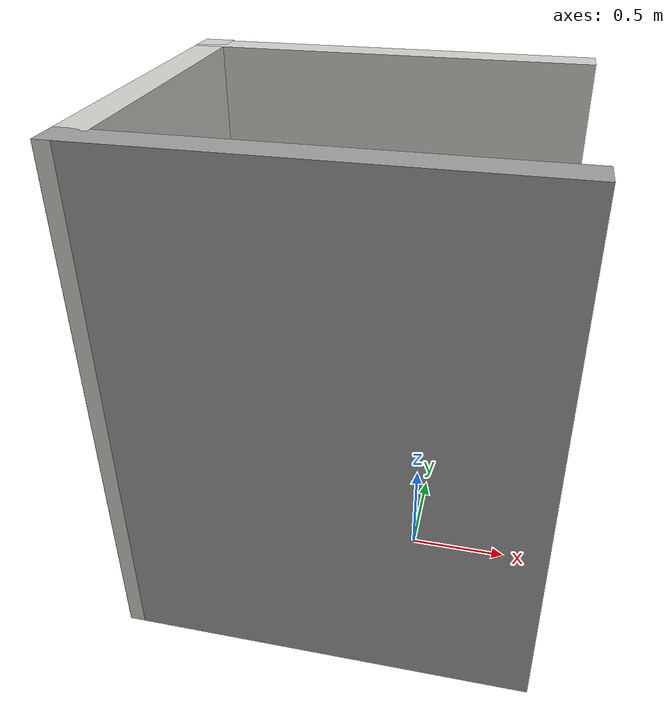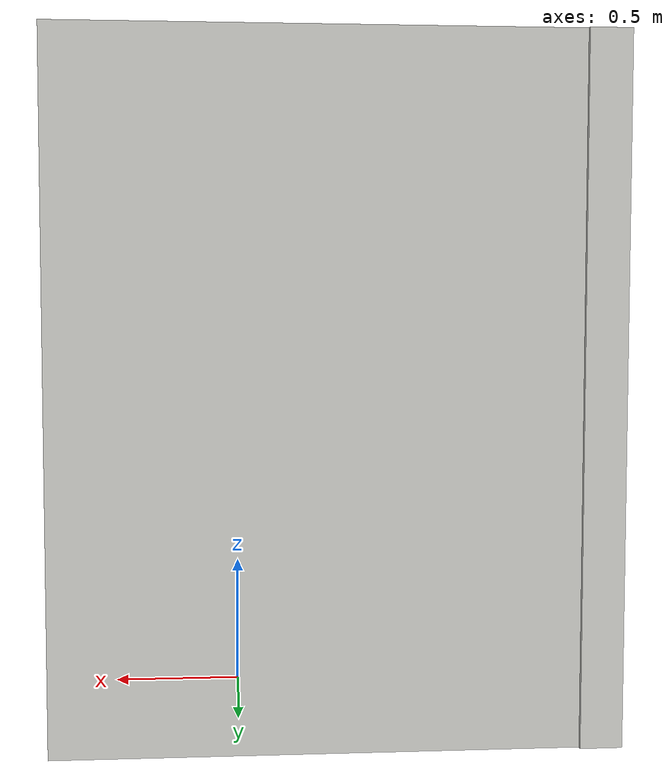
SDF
<?xml version='1.0'?>
<sdf version='1.7'>
  <model name='maze1'>
    <pose>-0.338644 0.023906 0 0 -0 0</pose>
    <link name='Wall_41'>
      <collision name='Wall_41_Collision'>
        <geometry>
          <box>
            <size>2 0.15 2.5</size>
          </box>
        </geometry>
        <pose>0 0 1.25 0 -0 0</pose>
      </collision>
      <visual name='Wall_41_Visual'>
        <pose>0 0 1.25 0 -0 0</pose>
        <geometry>
          <box>
            <size>2 0.15 2.5</size>
          </box>
        </geometry>
        <material>
          <script>
            <uri>file://media/materials/scripts/gazebo.material</uri>
            <name>Gazebo/Grey</name>
          </script>
          <ambient>1 1 1 1</ambient>
        </material>
        <meta>
          <layer>0</layer>
        </meta>
      </visual>
      <pose>0.00796 -0.799056 0 0 -0 3.14159</pose>
    </link>
    <link name='Wall_44'>
      <collision name='Wall_44_Collision'>
        <geometry>
          <box>
            <size>1.74818 0.15 2.5</size>
          </box>
        </geometry>
        <pose>0 0 1.25 0 -0 0</pose>
      </collision>
      <visual name='Wall_44_Visual'>
        <pose>0 0 1.25 0 -0 0</pose>
        <geometry>
          <box>
            <size>1.74818 0.15 2.5</size>
          </box>
        </geometry>
        <material>
          <script>
            <uri>file://media/materials/scripts/gazebo.material</uri>
            <name>Gazebo/CeilingTiled</name>
          </script>
          <ambient>1 1 1 1</ambient>
        </material>
        <meta>
          <layer>0</layer>
        </meta>
      </visual>
      <pose>-0.924645 0 0 0 -0 1.58031</pose>
    </link>
    <link name='Wall_45'>
      <collision name='Wall_45_Collision'>
        <geometry>
          <box>
            <size>2 0.15 2.5</size>
          </box>
        </geometry>
        <pose>0 0 1.25 0 -0 0</pose>
      </collision>
      <visual name='Wall_45_Visual'>
        <pose>0 0 1.25 0 -0 0</pose>
        <geometry>
          <box>
            <size>2 0.15 2.5</size>
          </box>
        </geometry>
        <material>
          <script>
            <uri>file://media/materials/scripts/gazebo.material</uri>
            <name>Gazebo/CeilingTiled</name>
          </script>
          <ambient>1 1 1 1</ambient>
        </material>
        <meta>
          <layer>0</layer>
        </meta>
      </visual>
      <pose>-0.007249 0.783847 0 0 -0 0</pose>
    </link>
    <static>1</static>
  </model>
</sdf>
